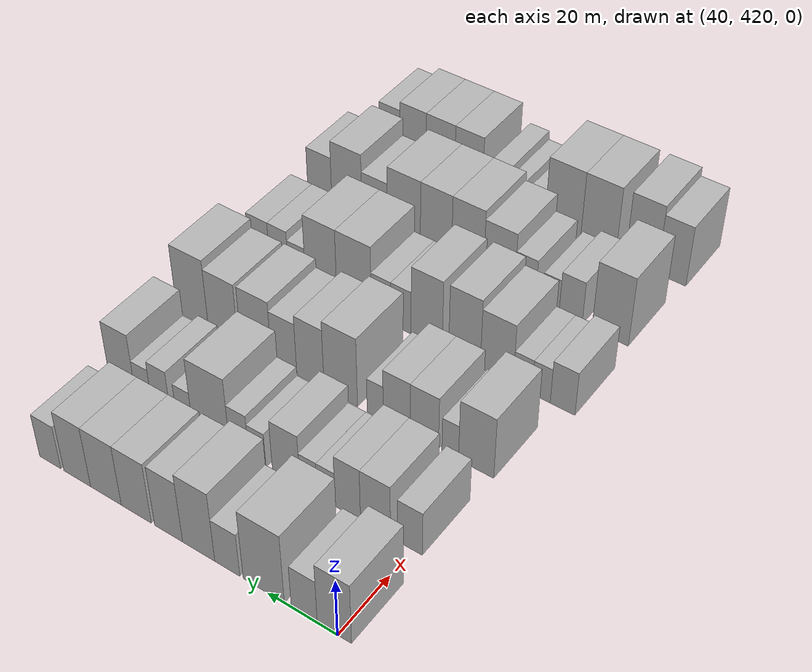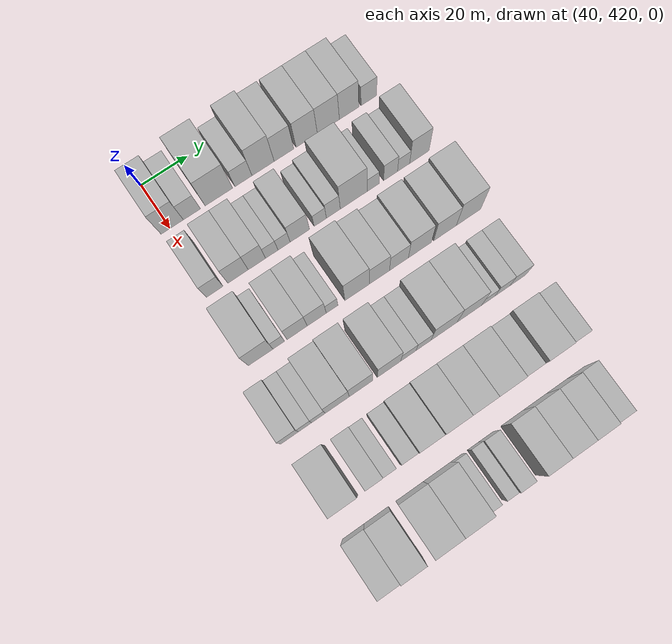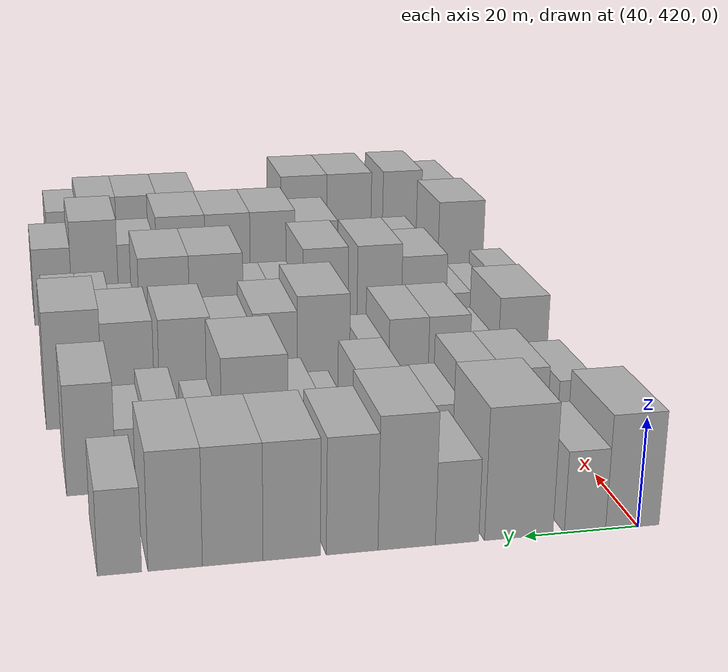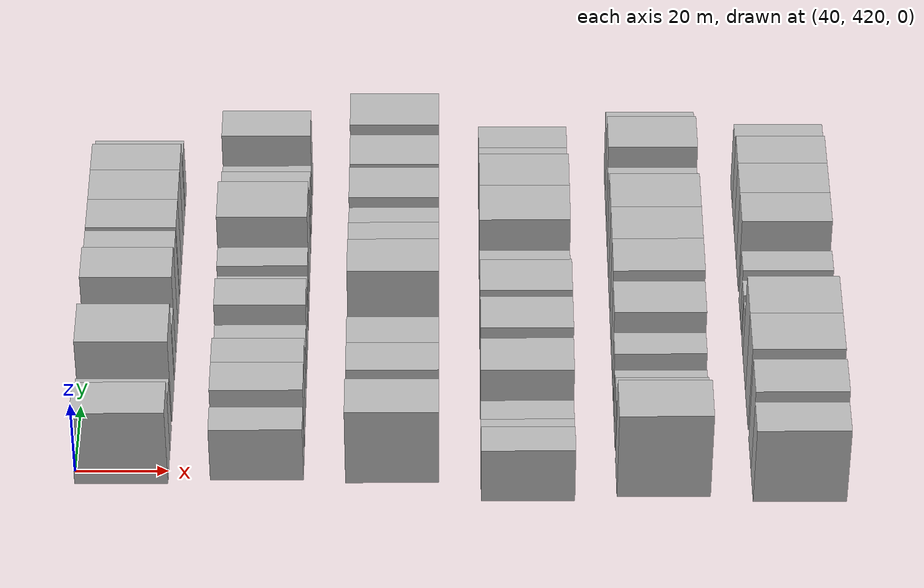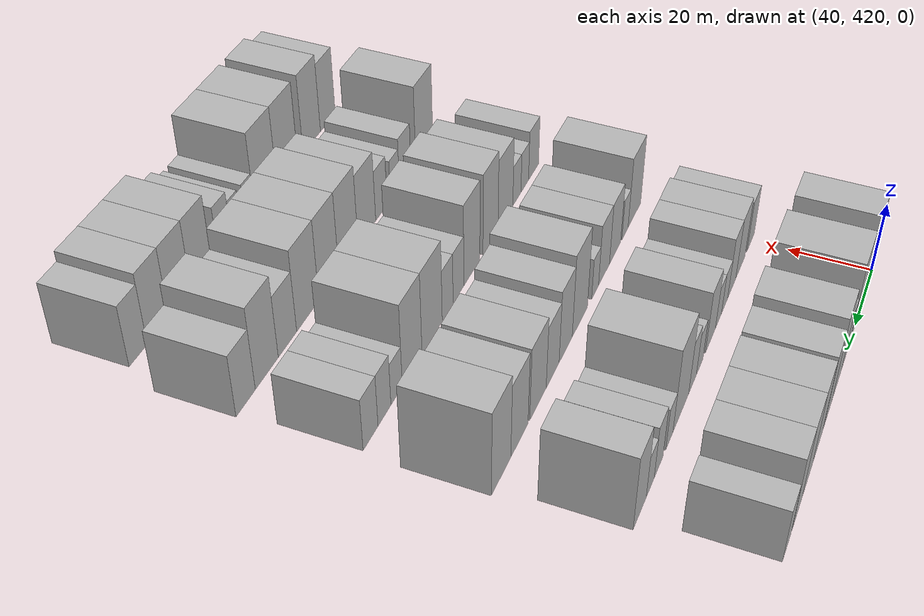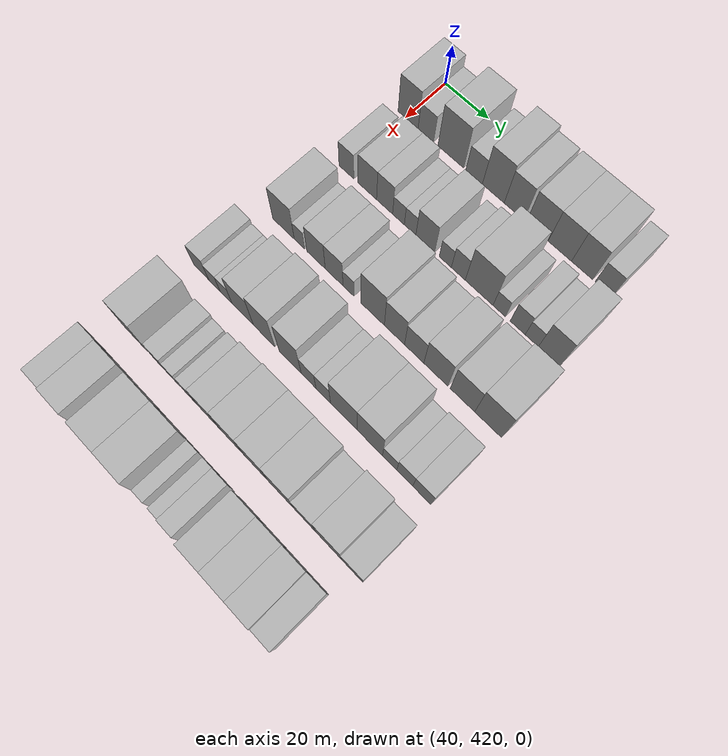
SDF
<sdf version="1.6">
 <world name="default">
  <model name="building_106">
   <static>1</static>
   <pose>50.0000 421.0700 0 0.000000 0.000000 0.000000</pose>
   <link name="link">
    <pose>0 0 10.50 0 0 0</pose>
    <collision name="collision"><geometry><box><size>20.0000 9.5259 21.0000</size></box></geometry></collision>
    <visual name="visual">
     <cast_shadows>0</cast_shadows>
     <geometry><box><size>20.0000 9.5259 21.0000</size></box></geometry>
     <material>
      <script>
       <uri>model://HANNAS_wall/materials/scripts</uri>
       <uri>model://HANNAS_wall/materials/textures</uri>
       <name>vrc/HANNAS_wall</name>
      </script>
     </material>
    </visual>
   </link>
  </model>
  <model name="building_107">
   <static>1</static>
   <pose>50.0000 429.4889 0 0.000000 0.000000 0.000000</pose>
   <link name="link">
    <pose>0 0 7.50 0 0 0</pose>
    <collision name="collision"><geometry><box><size>20.0000 7.3120 15.0000</size></box></geometry></collision>
    <visual name="visual">
     <cast_shadows>0</cast_shadows>
     <geometry><box><size>20.0000 7.3120 15.0000</size></box></geometry>
     <material>
      <script>
       <uri>model://HANNAS_wall/materials/scripts</uri>
       <uri>model://HANNAS_wall/materials/textures</uri>
       <name>vrc/HANNAS_wall</name>
      </script>
     </material>
    </visual>
   </link>
  </model>
  <model name="building_108">
   <static>1</static>
   <pose>50.0000 441.0995 0 0.000000 0.000000 0.000000</pose>
   <link name="link">
    <pose>0 0 12.00 0 0 0</pose>
    <collision name="collision"><geometry><box><size>20.0000 11.9092 24.0000</size></box></geometry></collision>
    <visual name="visual">
     <cast_shadows>0</cast_shadows>
     <geometry><box><size>20.0000 11.9092 24.0000</size></box></geometry>
     <material>
      <script>
       <uri>model://HANNAS_wall/materials/scripts</uri>
       <uri>model://HANNAS_wall/materials/textures</uri>
       <name>vrc/HANNAS_wall</name>
      </script>
     </material>
    </visual>
   </link>
  </model>
  <model name="building_109">
   <static>1</static>
   <pose>50.0000 451.7712 0 0.000000 0.000000 0.000000</pose>
   <link name="link">
    <pose>0 0 7.50 0 0 0</pose>
    <collision name="collision"><geometry><box><size>20.0000 7.4341 15.0000</size></box></geometry></collision>
    <visual name="visual">
     <cast_shadows>0</cast_shadows>
     <geometry><box><size>20.0000 7.4341 15.0000</size></box></geometry>
     <material>
      <script>
       <uri>model://HANNAS_wall/materials/scripts</uri>
       <uri>model://HANNAS_wall/materials/textures</uri>
       <name>vrc/HANNAS_wall</name>
      </script>
     </material>
    </visual>
   </link>
  </model>
  <model name="building_110">
   <static>1</static>
   <pose>50.0000 460.3554 0 0.000000 0.000000 0.000000</pose>
   <link name="link">
    <pose>0 0 12.00 0 0 0</pose>
    <collision name="collision"><geometry><box><size>20.0000 9.7344 24.0000</size></box></geometry></collision>
    <visual name="visual">
     <cast_shadows>0</cast_shadows>
     <geometry><box><size>20.0000 9.7344 24.0000</size></box></geometry>
     <material>
      <script>
       <uri>model://HANNAS_wall/materials/scripts</uri>
       <uri>model://HANNAS_wall/materials/textures</uri>
       <name>vrc/HANNAS_wall</name>
      </script>
     </material>
    </visual>
   </link>
  </model>
  <model name="building_111">
   <static>1</static>
   <pose>50.0000 469.5502 0 0.000000 0.000000 0.000000</pose>
   <link name="link">
    <pose>0 0 10.50 0 0 0</pose>
    <collision name="collision"><geometry><box><size>20.0000 8.6552 21.0000</size></box></geometry></collision>
    <visual name="visual">
     <cast_shadows>0</cast_shadows>
     <geometry><box><size>20.0000 8.6552 21.0000</size></box></geometry>
     <material>
      <script>
       <uri>model://HANNAS_wall/materials/scripts</uri>
       <uri>model://HANNAS_wall/materials/textures</uri>
       <name>vrc/HANNAS_wall</name>
      </script>
     </material>
    </visual>
   </link>
  </model>
  <model name="building_112">
   <static>1</static>
   <pose>50.0000 479.6152 0 0.000000 0.000000 0.000000</pose>
   <link name="link">
    <pose>0 0 10.50 0 0 0</pose>
    <collision name="collision"><geometry><box><size>20.0000 9.4749 21.0000</size></box></geometry></collision>
    <visual name="visual">
     <cast_shadows>0</cast_shadows>
     <geometry><box><size>20.0000 9.4749 21.0000</size></box></geometry>
     <material>
      <script>
       <uri>model://HANNAS_wall/materials/scripts</uri>
       <uri>model://HANNAS_wall/materials/textures</uri>
       <name>vrc/HANNAS_wall</name>
      </script>
     </material>
    </visual>
   </link>
  </model>
  <model name="building_113">
   <static>1</static>
   <pose>50.0000 489.2938 0 0.000000 0.000000 0.000000</pose>
   <link name="link">
    <pose>0 0 10.50 0 0 0</pose>
    <collision name="collision"><geometry><box><size>20.0000 9.8824 21.0000</size></box></geometry></collision>
    <visual name="visual">
     <cast_shadows>0</cast_shadows>
     <geometry><box><size>20.0000 9.8824 21.0000</size></box></geometry>
     <material>
      <script>
       <uri>model://HANNAS_wall/materials/scripts</uri>
       <uri>model://HANNAS_wall/materials/textures</uri>
       <name>vrc/HANNAS_wall</name>
      </script>
     </material>
    </visual>
   </link>
  </model>
  <model name="building_114">
   <static>1</static>
   <pose>50.0000 498.6228 0 0.000000 0.000000 0.000000</pose>
   <link name="link">
    <pose>0 0 10.50 0 0 0</pose>
    <collision name="collision"><geometry><box><size>20.0000 8.7757 21.0000</size></box></geometry></collision>
    <visual name="visual">
     <cast_shadows>0</cast_shadows>
     <geometry><box><size>20.0000 8.7757 21.0000</size></box></geometry>
     <material>
      <script>
       <uri>model://HANNAS_wall/materials/scripts</uri>
       <uri>model://HANNAS_wall/materials/textures</uri>
       <name>vrc/HANNAS_wall</name>
      </script>
     </material>
    </visual>
   </link>
  </model>
  <model name="building_115">
   <static>1</static>
   <pose>50.0000 507.5429 0 0.000000 0.000000 0.000000</pose>
   <link name="link">
    <pose>0 0 7.50 0 0 0</pose>
    <collision name="collision"><geometry><box><size>20.0000 7.0644 15.0000</size></box></geometry></collision>
    <visual name="visual">
     <cast_shadows>0</cast_shadows>
     <geometry><box><size>20.0000 7.0644 15.0000</size></box></geometry>
     <material>
      <script>
       <uri>model://HANNAS_wall/materials/scripts</uri>
       <uri>model://HANNAS_wall/materials/textures</uri>
       <name>vrc/HANNAS_wall</name>
      </script>
     </material>
    </visual>
   </link>
  </model>
  <model name="building_218">
   <static>1</static>
   <pose>79.0000 420.8566 0 0.000000 0.000000 0.000000</pose>
   <link name="link">
    <pose>0 0 7.50 0 0 0</pose>
    <collision name="collision"><geometry><box><size>20.0000 7.0598 15.0000</size></box></geometry></collision>
    <visual name="visual">
     <cast_shadows>0</cast_shadows>
     <geometry><box><size>20.0000 7.0598 15.0000</size></box></geometry>
     <material>
      <script>
       <uri>model://HANNAS_wall/materials/scripts</uri>
       <uri>model://HANNAS_wall/materials/textures</uri>
       <name>vrc/HANNAS_wall</name>
      </script>
     </material>
    </visual>
   </link>
  </model>
  <model name="building_219">
   <static>1</static>
   <pose>79.0000 430.7290 0 0.000000 0.000000 0.000000</pose>
   <link name="link">
    <pose>0 0 9.00 0 0 0</pose>
    <collision name="collision"><geometry><box><size>20.0000 8.6850 18.0000</size></box></geometry></collision>
    <visual name="visual">
     <cast_shadows>0</cast_shadows>
     <geometry><box><size>20.0000 8.6850 18.0000</size></box></geometry>
     <material>
      <script>
       <uri>model://HANNAS_wall/materials/scripts</uri>
       <uri>model://HANNAS_wall/materials/textures</uri>
       <name>vrc/HANNAS_wall</name>
      </script>
     </material>
    </visual>
   </link>
  </model>
  <model name="building_220">
   <static>1</static>
   <pose>79.0000 438.7784 0 0.000000 0.000000 0.000000</pose>
   <link name="link">
    <pose>0 0 9.00 0 0 0</pose>
    <collision name="collision"><geometry><box><size>20.0000 7.4138 18.0000</size></box></geometry></collision>
    <visual name="visual">
     <cast_shadows>0</cast_shadows>
     <geometry><box><size>20.0000 7.4138 18.0000</size></box></geometry>
     <material>
      <script>
       <uri>model://HANNAS_wall/materials/scripts</uri>
       <uri>model://HANNAS_wall/materials/textures</uri>
       <name>vrc/HANNAS_wall</name>
      </script>
     </material>
    </visual>
   </link>
  </model>
  <model name="building_221">
   <static>1</static>
   <pose>79.0000 445.1678 0 0.000000 0.000000 0.000000</pose>
   <link name="link">
    <pose>0 0 6.00 0 0 0</pose>
    <collision name="collision"><geometry><box><size>20.0000 5.3648 12.0000</size></box></geometry></collision>
    <visual name="visual">
     <cast_shadows>0</cast_shadows>
     <geometry><box><size>20.0000 5.3648 12.0000</size></box></geometry>
     <material>
      <script>
       <uri>model://HANNAS_wall/materials/scripts</uri>
       <uri>model://HANNAS_wall/materials/textures</uri>
       <name>vrc/HANNAS_wall</name>
      </script>
     </material>
    </visual>
   </link>
  </model>
  <model name="building_222">
   <static>1</static>
   <pose>79.0000 450.4638 0 0.000000 0.000000 0.000000</pose>
   <link name="link">
    <pose>0 0 6.00 0 0 0</pose>
    <collision name="collision"><geometry><box><size>20.0000 5.2271 12.0000</size></box></geometry></collision>
    <visual name="visual">
     <cast_shadows>0</cast_shadows>
     <geometry><box><size>20.0000 5.2271 12.0000</size></box></geometry>
     <material>
      <script>
       <uri>model://HANNAS_wall/materials/scripts</uri>
       <uri>model://HANNAS_wall/materials/textures</uri>
       <name>vrc/HANNAS_wall</name>
      </script>
     </material>
    </visual>
   </link>
  </model>
  <model name="building_223">
   <static>1</static>
   <pose>79.0000 457.2818 0 0.000000 0.000000 0.000000</pose>
   <link name="link">
    <pose>0 0 9.00 0 0 0</pose>
    <collision name="collision"><geometry><box><size>20.0000 8.4089 18.0000</size></box></geometry></collision>
    <visual name="visual">
     <cast_shadows>0</cast_shadows>
     <geometry><box><size>20.0000 8.4089 18.0000</size></box></geometry>
     <material>
      <script>
       <uri>model://HANNAS_wall/materials/scripts</uri>
       <uri>model://HANNAS_wall/materials/textures</uri>
       <name>vrc/HANNAS_wall</name>
      </script>
     </material>
    </visual>
   </link>
  </model>
  <model name="building_224">
   <static>1</static>
   <pose>79.0000 466.1671 0 0.000000 0.000000 0.000000</pose>
   <link name="link">
    <pose>0 0 6.00 0 0 0</pose>
    <collision name="collision"><geometry><box><size>20.0000 5.3617 12.0000</size></box></geometry></collision>
    <visual name="visual">
     <cast_shadows>0</cast_shadows>
     <geometry><box><size>20.0000 5.3617 12.0000</size></box></geometry>
     <material>
      <script>
       <uri>model://HANNAS_wall/materials/scripts</uri>
       <uri>model://HANNAS_wall/materials/textures</uri>
       <name>vrc/HANNAS_wall</name>
      </script>
     </material>
    </visual>
   </link>
  </model>
  <model name="building_225">
   <static>1</static>
   <pose>79.0000 471.8829 0 0.000000 0.000000 0.000000</pose>
   <link name="link">
    <pose>0 0 7.50 0 0 0</pose>
    <collision name="collision"><geometry><box><size>20.0000 6.0700 15.0000</size></box></geometry></collision>
    <visual name="visual">
     <cast_shadows>0</cast_shadows>
     <geometry><box><size>20.0000 6.0700 15.0000</size></box></geometry>
     <material>
      <script>
       <uri>model://HANNAS_wall/materials/scripts</uri>
       <uri>model://HANNAS_wall/materials/textures</uri>
       <name>vrc/HANNAS_wall</name>
      </script>
     </material>
    </visual>
   </link>
  </model>
  <model name="building_226">
   <static>1</static>
   <pose>79.0000 480.8819 0 0.000000 0.000000 0.000000</pose>
   <link name="link">
    <pose>0 0 12.00 0 0 0</pose>
    <collision name="collision"><geometry><box><size>20.0000 11.9279 24.0000</size></box></geometry></collision>
    <visual name="visual">
     <cast_shadows>0</cast_shadows>
     <geometry><box><size>20.0000 11.9279 24.0000</size></box></geometry>
     <material>
      <script>
       <uri>model://HANNAS_wall/materials/scripts</uri>
       <uri>model://HANNAS_wall/materials/textures</uri>
       <name>vrc/HANNAS_wall</name>
      </script>
     </material>
    </visual>
   </link>
  </model>
  <model name="building_227">
   <static>1</static>
   <pose>79.0000 489.4643 0 0.000000 0.000000 0.000000</pose>
   <link name="link">
    <pose>0 0 6.00 0 0 0</pose>
    <collision name="collision"><geometry><box><size>20.0000 5.2369 12.0000</size></box></geometry></collision>
    <visual name="visual">
     <cast_shadows>0</cast_shadows>
     <geometry><box><size>20.0000 5.2369 12.0000</size></box></geometry>
     <material>
      <script>
       <uri>model://HANNAS_wall/materials/scripts</uri>
       <uri>model://HANNAS_wall/materials/textures</uri>
       <name>vrc/HANNAS_wall</name>
      </script>
     </material>
    </visual>
   </link>
  </model>
  <model name="building_228">
   <static>1</static>
   <pose>79.0000 497.1953 0 0.000000 0.000000 0.000000</pose>
   <link name="link">
    <pose>0 0 7.50 0 0 0</pose>
    <collision name="collision"><geometry><box><size>20.0000 6.2251 15.0000</size></box></geometry></collision>
    <visual name="visual">
     <cast_shadows>0</cast_shadows>
     <geometry><box><size>20.0000 6.2251 15.0000</size></box></geometry>
     <material>
      <script>
       <uri>model://HANNAS_wall/materials/scripts</uri>
       <uri>model://HANNAS_wall/materials/textures</uri>
       <name>vrc/HANNAS_wall</name>
      </script>
     </material>
    </visual>
   </link>
  </model>
  <model name="building_229">
   <static>1</static>
   <pose>79.0000 503.0365 0 0.000000 0.000000 0.000000</pose>
   <link name="link">
    <pose>0 0 6.00 0 0 0</pose>
    <collision name="collision"><geometry><box><size>20.0000 5.4574 12.0000</size></box></geometry></collision>
    <visual name="visual">
     <cast_shadows>0</cast_shadows>
     <geometry><box><size>20.0000 5.4574 12.0000</size></box></geometry>
     <material>
      <script>
       <uri>model://HANNAS_wall/materials/scripts</uri>
       <uri>model://HANNAS_wall/materials/textures</uri>
       <name>vrc/HANNAS_wall</name>
      </script>
     </material>
    </visual>
   </link>
  </model>
  <model name="building_230">
   <static>1</static>
   <pose>79.0000 510.1173 0 0.000000 0.000000 0.000000</pose>
   <link name="link">
    <pose>0 0 10.50 0 0 0</pose>
    <collision name="collision"><geometry><box><size>20.0000 8.7043 21.0000</size></box></geometry></collision>
    <visual name="visual">
     <cast_shadows>0</cast_shadows>
     <geometry><box><size>20.0000 8.7043 21.0000</size></box></geometry>
     <material>
      <script>
       <uri>model://HANNAS_wall/materials/scripts</uri>
       <uri>model://HANNAS_wall/materials/textures</uri>
       <name>vrc/HANNAS_wall</name>
      </script>
     </material>
    </visual>
   </link>
  </model>
  <model name="building_336">
   <static>1</static>
   <pose>108.0000 421.5113 0 0.000000 0.000000 0.000000</pose>
   <link name="link">
    <pose>0 0 10.50 0 0 0</pose>
    <collision name="collision"><geometry><box><size>20.0000 10.2613 21.0000</size></box></geometry></collision>
    <visual name="visual">
     <cast_shadows>0</cast_shadows>
     <geometry><box><size>20.0000 10.2613 21.0000</size></box></geometry>
     <material>
      <script>
       <uri>model://HANNAS_wall/materials/scripts</uri>
       <uri>model://HANNAS_wall/materials/textures</uri>
       <name>vrc/HANNAS_wall</name>
      </script>
     </material>
    </visual>
   </link>
  </model>
  <model name="building_337">
   <static>1</static>
   <pose>108.0000 429.0922 0 0.000000 0.000000 0.000000</pose>
   <link name="link">
    <pose>0 0 6.00 0 0 0</pose>
    <collision name="collision"><geometry><box><size>20.0000 4.9005 12.0000</size></box></geometry></collision>
    <visual name="visual">
     <cast_shadows>0</cast_shadows>
     <geometry><box><size>20.0000 4.9005 12.0000</size></box></geometry>
     <material>
      <script>
       <uri>model://HANNAS_wall/materials/scripts</uri>
       <uri>model://HANNAS_wall/materials/textures</uri>
       <name>vrc/HANNAS_wall</name>
      </script>
     </material>
    </visual>
   </link>
  </model>
  <model name="building_338">
   <static>1</static>
   <pose>108.0000 436.8158 0 0.000000 0.000000 0.000000</pose>
   <link name="link">
    <pose>0 0 9.00 0 0 0</pose>
    <collision name="collision"><geometry><box><size>20.0000 8.5467 18.0000</size></box></geometry></collision>
    <visual name="visual">
     <cast_shadows>0</cast_shadows>
     <geometry><box><size>20.0000 8.5467 18.0000</size></box></geometry>
     <material>
      <script>
       <uri>model://HANNAS_wall/materials/scripts</uri>
       <uri>model://HANNAS_wall/materials/textures</uri>
       <name>vrc/HANNAS_wall</name>
      </script>
     </material>
    </visual>
   </link>
  </model>
  <model name="building_339">
   <static>1</static>
   <pose>108.0000 445.1561 0 0.000000 0.000000 0.000000</pose>
   <link name="link">
    <pose>0 0 9.00 0 0 0</pose>
    <collision name="collision"><geometry><box><size>20.0000 8.1340 18.0000</size></box></geometry></collision>
    <visual name="visual">
     <cast_shadows>0</cast_shadows>
     <geometry><box><size>20.0000 8.1340 18.0000</size></box></geometry>
     <material>
      <script>
       <uri>model://HANNAS_wall/materials/scripts</uri>
       <uri>model://HANNAS_wall/materials/textures</uri>
       <name>vrc/HANNAS_wall</name>
      </script>
     </material>
    </visual>
   </link>
  </model>
  <model name="building_340">
   <static>1</static>
   <pose>108.0000 451.7113 0 0.000000 0.000000 0.000000</pose>
   <link name="link">
    <pose>0 0 6.00 0 0 0</pose>
    <collision name="collision"><geometry><box><size>20.0000 4.9764 12.0000</size></box></geometry></collision>
    <visual name="visual">
     <cast_shadows>0</cast_shadows>
     <geometry><box><size>20.0000 4.9764 12.0000</size></box></geometry>
     <material>
      <script>
       <uri>model://HANNAS_wall/materials/scripts</uri>
       <uri>model://HANNAS_wall/materials/textures</uri>
       <name>vrc/HANNAS_wall</name>
      </script>
     </material>
    </visual>
   </link>
  </model>
  <model name="building_341">
   <static>1</static>
   <pose>108.0000 462.4557 0 0.000000 0.000000 0.000000</pose>
   <link name="link">
    <pose>0 0 12.00 0 0 0</pose>
    <collision name="collision"><geometry><box><size>20.0000 10.5124 24.0000</size></box></geometry></collision>
    <visual name="visual">
     <cast_shadows>0</cast_shadows>
     <geometry><box><size>20.0000 10.5124 24.0000</size></box></geometry>
     <material>
      <script>
       <uri>model://HANNAS_wall/materials/scripts</uri>
       <uri>model://HANNAS_wall/materials/textures</uri>
       <name>vrc/HANNAS_wall</name>
      </script>
     </material>
    </visual>
   </link>
  </model>
  <model name="building_342">
   <static>1</static>
   <pose>108.0000 472.1024 0 0.000000 0.000000 0.000000</pose>
   <link name="link">
    <pose>0 0 10.50 0 0 0</pose>
    <collision name="collision"><geometry><box><size>20.0000 8.7811 21.0000</size></box></geometry></collision>
    <visual name="visual">
     <cast_shadows>0</cast_shadows>
     <geometry><box><size>20.0000 8.7811 21.0000</size></box></geometry>
     <material>
      <script>
       <uri>model://HANNAS_wall/materials/scripts</uri>
       <uri>model://HANNAS_wall/materials/textures</uri>
       <name>vrc/HANNAS_wall</name>
      </script>
     </material>
    </visual>
   </link>
  </model>
  <model name="building_343">
   <static>1</static>
   <pose>108.0000 480.6254 0 0.000000 0.000000 0.000000</pose>
   <link name="link">
    <pose>0 0 9.00 0 0 0</pose>
    <collision name="collision"><geometry><box><size>20.0000 8.2649 18.0000</size></box></geometry></collision>
    <visual name="visual">
     <cast_shadows>0</cast_shadows>
     <geometry><box><size>20.0000 8.2649 18.0000</size></box></geometry>
     <material>
      <script>
       <uri>model://HANNAS_wall/materials/scripts</uri>
       <uri>model://HANNAS_wall/materials/textures</uri>
       <name>vrc/HANNAS_wall</name>
      </script>
     </material>
    </visual>
   </link>
  </model>
  <model name="building_344">
   <static>1</static>
   <pose>108.0000 489.8284 0 0.000000 0.000000 0.000000</pose>
   <link name="link">
    <pose>0 0 10.50 0 0 0</pose>
    <collision name="collision"><geometry><box><size>20.0000 10.1411 21.0000</size></box></geometry></collision>
    <visual name="visual">
     <cast_shadows>0</cast_shadows>
     <geometry><box><size>20.0000 10.1411 21.0000</size></box></geometry>
     <material>
      <script>
       <uri>model://HANNAS_wall/materials/scripts</uri>
       <uri>model://HANNAS_wall/materials/textures</uri>
       <name>vrc/HANNAS_wall</name>
      </script>
     </material>
    </visual>
   </link>
  </model>
  <model name="building_345">
   <static>1</static>
   <pose>108.0000 500.9494 0 0.000000 0.000000 0.000000</pose>
   <link name="link">
    <pose>0 0 10.50 0 0 0</pose>
    <collision name="collision"><geometry><box><size>20.0000 10.1008 21.0000</size></box></geometry></collision>
    <visual name="visual">
     <cast_shadows>0</cast_shadows>
     <geometry><box><size>20.0000 10.1008 21.0000</size></box></geometry>
     <material>
      <script>
       <uri>model://HANNAS_wall/materials/scripts</uri>
       <uri>model://HANNAS_wall/materials/textures</uri>
       <name>vrc/HANNAS_wall</name>
      </script>
     </material>
    </visual>
   </link>
  </model>
  <model name="building_346">
   <static>1</static>
   <pose>108.0000 511.4466 0 0.000000 0.000000 0.000000</pose>
   <link name="link">
    <pose>0 0 12.00 0 0 0</pose>
    <collision name="collision"><geometry><box><size>20.0000 10.8937 24.0000</size></box></geometry></collision>
    <visual name="visual">
     <cast_shadows>0</cast_shadows>
     <geometry><box><size>20.0000 10.8937 24.0000</size></box></geometry>
     <material>
      <script>
       <uri>model://HANNAS_wall/materials/scripts</uri>
       <uri>model://HANNAS_wall/materials/textures</uri>
       <name>vrc/HANNAS_wall</name>
      </script>
     </material>
    </visual>
   </link>
  </model>
  <model name="building_451">
   <static>1</static>
   <pose>137.0000 414.5293 0 0.000000 0.000000 0.000000</pose>
   <link name="link">
    <pose>0 0 7.50 0 0 0</pose>
    <collision name="collision"><geometry><box><size>20.0000 7.2619 15.0000</size></box></geometry></collision>
    <visual name="visual">
     <cast_shadows>0</cast_shadows>
     <geometry><box><size>20.0000 7.2619 15.0000</size></box></geometry>
     <material>
      <script>
       <uri>model://HANNAS_wall/materials/scripts</uri>
       <uri>model://HANNAS_wall/materials/textures</uri>
       <name>vrc/HANNAS_wall</name>
      </script>
     </material>
    </visual>
   </link>
  </model>
  <model name="building_452">
   <static>1</static>
   <pose>137.0000 420.8727 0 0.000000 0.000000 0.000000</pose>
   <link name="link">
    <pose>0 0 6.00 0 0 0</pose>
    <collision name="collision"><geometry><box><size>20.0000 5.4248 12.0000</size></box></geometry></collision>
    <visual name="visual">
     <cast_shadows>0</cast_shadows>
     <geometry><box><size>20.0000 5.4248 12.0000</size></box></geometry>
     <material>
      <script>
       <uri>model://HANNAS_wall/materials/scripts</uri>
       <uri>model://HANNAS_wall/materials/textures</uri>
       <name>vrc/HANNAS_wall</name>
      </script>
     </material>
    </visual>
   </link>
  </model>
  <model name="building_453">
   <static>1</static>
   <pose>137.0000 426.4140 0 0.000000 0.000000 0.000000</pose>
   <link name="link">
    <pose>0 0 6.00 0 0 0</pose>
    <collision name="collision"><geometry><box><size>20.0000 5.6580 12.0000</size></box></geometry></collision>
    <visual name="visual">
     <cast_shadows>0</cast_shadows>
     <geometry><box><size>20.0000 5.6580 12.0000</size></box></geometry>
     <material>
      <script>
       <uri>model://HANNAS_wall/materials/scripts</uri>
       <uri>model://HANNAS_wall/materials/textures</uri>
       <name>vrc/HANNAS_wall</name>
      </script>
     </material>
    </visual>
   </link>
  </model>
  <model name="building_454">
   <static>1</static>
   <pose>137.0000 434.2585 0 0.000000 0.000000 0.000000</pose>
   <link name="link">
    <pose>0 0 10.50 0 0 0</pose>
    <collision name="collision"><geometry><box><size>20.0000 10.0308 21.0000</size></box></geometry></collision>
    <visual name="visual">
     <cast_shadows>0</cast_shadows>
     <geometry><box><size>20.0000 10.0308 21.0000</size></box></geometry>
     <material>
      <script>
       <uri>model://HANNAS_wall/materials/scripts</uri>
       <uri>model://HANNAS_wall/materials/textures</uri>
       <name>vrc/HANNAS_wall</name>
      </script>
     </material>
    </visual>
   </link>
  </model>
  <model name="building_455">
   <static>1</static>
   <pose>137.0000 444.1839 0 0.000000 0.000000 0.000000</pose>
   <link name="link">
    <pose>0 0 12.00 0 0 0</pose>
    <collision name="collision"><geometry><box><size>20.0000 9.8200 24.0000</size></box></geometry></collision>
    <visual name="visual">
     <cast_shadows>0</cast_shadows>
     <geometry><box><size>20.0000 9.8200 24.0000</size></box></geometry>
     <material>
      <script>
       <uri>model://HANNAS_wall/materials/scripts</uri>
       <uri>model://HANNAS_wall/materials/textures</uri>
       <name>vrc/HANNAS_wall</name>
      </script>
     </material>
    </visual>
   </link>
  </model>
  <model name="building_456">
   <static>1</static>
   <pose>137.0000 456.0535 0 0.000000 0.000000 0.000000</pose>
   <link name="link">
    <pose>0 0 12.00 0 0 0</pose>
    <collision name="collision"><geometry><box><size>20.0000 9.9194 24.0000</size></box></geometry></collision>
    <visual name="visual">
     <cast_shadows>0</cast_shadows>
     <geometry><box><size>20.0000 9.9194 24.0000</size></box></geometry>
     <material>
      <script>
       <uri>model://HANNAS_wall/materials/scripts</uri>
       <uri>model://HANNAS_wall/materials/textures</uri>
       <name>vrc/HANNAS_wall</name>
      </script>
     </material>
    </visual>
   </link>
  </model>
  <model name="building_457">
   <static>1</static>
   <pose>137.0000 464.2619 0 0.000000 0.000000 0.000000</pose>
   <link name="link">
    <pose>0 0 7.50 0 0 0</pose>
    <collision name="collision"><geometry><box><size>20.0000 6.4974 15.0000</size></box></geometry></collision>
    <visual name="visual">
     <cast_shadows>0</cast_shadows>
     <geometry><box><size>20.0000 6.4974 15.0000</size></box></geometry>
     <material>
      <script>
       <uri>model://HANNAS_wall/materials/scripts</uri>
       <uri>model://HANNAS_wall/materials/textures</uri>
       <name>vrc/HANNAS_wall</name>
      </script>
     </material>
    </visual>
   </link>
  </model>
  <model name="building_458">
   <static>1</static>
   <pose>137.0000 470.6989 0 0.000000 0.000000 0.000000</pose>
   <link name="link">
    <pose>0 0 7.50 0 0 0</pose>
    <collision name="collision"><geometry><box><size>20.0000 6.3768 15.0000</size></box></geometry></collision>
    <visual name="visual">
     <cast_shadows>0</cast_shadows>
     <geometry><box><size>20.0000 6.3768 15.0000</size></box></geometry>
     <material>
      <script>
       <uri>model://HANNAS_wall/materials/scripts</uri>
       <uri>model://HANNAS_wall/materials/textures</uri>
       <name>vrc/HANNAS_wall</name>
      </script>
     </material>
    </visual>
   </link>
  </model>
  <model name="building_459">
   <static>1</static>
   <pose>137.0000 479.6136 0 0.000000 0.000000 0.000000</pose>
   <link name="link">
    <pose>0 0 12.00 0 0 0</pose>
    <collision name="collision"><geometry><box><size>20.0000 11.4525 24.0000</size></box></geometry></collision>
    <visual name="visual">
     <cast_shadows>0</cast_shadows>
     <geometry><box><size>20.0000 11.4525 24.0000</size></box></geometry>
     <material>
      <script>
       <uri>model://HANNAS_wall/materials/scripts</uri>
       <uri>model://HANNAS_wall/materials/textures</uri>
       <name>vrc/HANNAS_wall</name>
      </script>
     </material>
    </visual>
   </link>
  </model>
  <model name="building_460">
   <static>1</static>
   <pose>137.0000 490.6559 0 0.000000 0.000000 0.000000</pose>
   <link name="link">
    <pose>0 0 12.00 0 0 0</pose>
    <collision name="collision"><geometry><box><size>20.0000 10.6320 24.0000</size></box></geometry></collision>
    <visual name="visual">
     <cast_shadows>0</cast_shadows>
     <geometry><box><size>20.0000 10.6320 24.0000</size></box></geometry>
     <material>
      <script>
       <uri>model://HANNAS_wall/materials/scripts</uri>
       <uri>model://HANNAS_wall/materials/textures</uri>
       <name>vrc/HANNAS_wall</name>
      </script>
     </material>
    </visual>
   </link>
  </model>
  <model name="building_461">
   <static>1</static>
   <pose>137.0000 498.9231 0 0.000000 0.000000 0.000000</pose>
   <link name="link">
    <pose>0 0 6.00 0 0 0</pose>
    <collision name="collision"><geometry><box><size>20.0000 5.9023 12.0000</size></box></geometry></collision>
    <visual name="visual">
     <cast_shadows>0</cast_shadows>
     <geometry><box><size>20.0000 5.9023 12.0000</size></box></geometry>
     <material>
      <script>
       <uri>model://HANNAS_wall/materials/scripts</uri>
       <uri>model://HANNAS_wall/materials/textures</uri>
       <name>vrc/HANNAS_wall</name>
      </script>
     </material>
    </visual>
   </link>
  </model>
  <model name="building_462">
   <static>1</static>
   <pose>137.0000 505.1455 0 0.000000 0.000000 0.000000</pose>
   <link name="link">
    <pose>0 0 7.50 0 0 0</pose>
    <collision name="collision"><geometry><box><size>20.0000 6.5425 15.0000</size></box></geometry></collision>
    <visual name="visual">
     <cast_shadows>0</cast_shadows>
     <geometry><box><size>20.0000 6.5425 15.0000</size></box></geometry>
     <material>
      <script>
       <uri>model://HANNAS_wall/materials/scripts</uri>
       <uri>model://HANNAS_wall/materials/textures</uri>
       <name>vrc/HANNAS_wall</name>
      </script>
     </material>
    </visual>
   </link>
  </model>
  <model name="building_463">
   <static>1</static>
   <pose>137.0000 512.0846 0 0.000000 0.000000 0.000000</pose>
   <link name="link">
    <pose>0 0 7.50 0 0 0</pose>
    <collision name="collision"><geometry><box><size>20.0000 7.3358 15.0000</size></box></geometry></collision>
    <visual name="visual">
     <cast_shadows>0</cast_shadows>
     <geometry><box><size>20.0000 7.3358 15.0000</size></box></geometry>
     <material>
      <script>
       <uri>model://HANNAS_wall/materials/scripts</uri>
       <uri>model://HANNAS_wall/materials/textures</uri>
       <name>vrc/HANNAS_wall</name>
      </script>
     </material>
    </visual>
   </link>
  </model>
  <model name="building_574">
   <static>1</static>
   <pose>166.0000 417.4989 0 0.000000 0.000000 0.000000</pose>
   <link name="link">
    <pose>0 0 12.00 0 0 0</pose>
    <collision name="collision"><geometry><box><size>20.0000 11.0020 24.0000</size></box></geometry></collision>
    <visual name="visual">
     <cast_shadows>0</cast_shadows>
     <geometry><box><size>20.0000 11.0020 24.0000</size></box></geometry>
     <material>
      <script>
       <uri>model://HANNAS_wall/materials/scripts</uri>
       <uri>model://HANNAS_wall/materials/textures</uri>
       <name>vrc/HANNAS_wall</name>
      </script>
     </material>
    </visual>
   </link>
  </model>
  <model name="building_575">
   <static>1</static>
   <pose>166.0000 429.5696 0 0.000000 0.000000 0.000000</pose>
   <link name="link">
    <pose>0 0 7.50 0 0 0</pose>
    <collision name="collision"><geometry><box><size>20.0000 7.1395 15.0000</size></box></geometry></collision>
    <visual name="visual">
     <cast_shadows>0</cast_shadows>
     <geometry><box><size>20.0000 7.1395 15.0000</size></box></geometry>
     <material>
      <script>
       <uri>model://HANNAS_wall/materials/scripts</uri>
       <uri>model://HANNAS_wall/materials/textures</uri>
       <name>vrc/HANNAS_wall</name>
      </script>
     </material>
    </visual>
   </link>
  </model>
  <model name="building_576">
   <static>1</static>
   <pose>166.0000 435.8285 0 0.000000 0.000000 0.000000</pose>
   <link name="link">
    <pose>0 0 6.00 0 0 0</pose>
    <collision name="collision"><geometry><box><size>20.0000 5.3783 12.0000</size></box></geometry></collision>
    <visual name="visual">
     <cast_shadows>0</cast_shadows>
     <geometry><box><size>20.0000 5.3783 12.0000</size></box></geometry>
     <material>
      <script>
       <uri>model://HANNAS_wall/materials/scripts</uri>
       <uri>model://HANNAS_wall/materials/textures</uri>
       <name>vrc/HANNAS_wall</name>
      </script>
     </material>
    </visual>
   </link>
  </model>
  <model name="building_577">
   <static>1</static>
   <pose>166.0000 443.8688 0 0.000000 0.000000 0.000000</pose>
   <link name="link">
    <pose>0 0 7.50 0 0 0</pose>
    <collision name="collision"><geometry><box><size>20.0000 6.7024 15.0000</size></box></geometry></collision>
    <visual name="visual">
     <cast_shadows>0</cast_shadows>
     <geometry><box><size>20.0000 6.7024 15.0000</size></box></geometry>
     <material>
      <script>
       <uri>model://HANNAS_wall/materials/scripts</uri>
       <uri>model://HANNAS_wall/materials/textures</uri>
       <name>vrc/HANNAS_wall</name>
      </script>
     </material>
    </visual>
   </link>
  </model>
  <model name="building_578">
   <static>1</static>
   <pose>166.0000 452.2185 0 0.000000 0.000000 0.000000</pose>
   <link name="link">
    <pose>0 0 10.50 0 0 0</pose>
    <collision name="collision"><geometry><box><size>20.0000 9.9971 21.0000</size></box></geometry></collision>
    <visual name="visual">
     <cast_shadows>0</cast_shadows>
     <geometry><box><size>20.0000 9.9971 21.0000</size></box></geometry>
     <material>
      <script>
       <uri>model://HANNAS_wall/materials/scripts</uri>
       <uri>model://HANNAS_wall/materials/textures</uri>
       <name>vrc/HANNAS_wall</name>
      </script>
     </material>
    </visual>
   </link>
  </model>
  <model name="building_579">
   <static>1</static>
   <pose>166.0000 462.4750 0 0.000000 0.000000 0.000000</pose>
   <link name="link">
    <pose>0 0 12.00 0 0 0</pose>
    <collision name="collision"><geometry><box><size>20.0000 10.5160 24.0000</size></box></geometry></collision>
    <visual name="visual">
     <cast_shadows>0</cast_shadows>
     <geometry><box><size>20.0000 10.5160 24.0000</size></box></geometry>
     <material>
      <script>
       <uri>model://HANNAS_wall/materials/scripts</uri>
       <uri>model://HANNAS_wall/materials/textures</uri>
       <name>vrc/HANNAS_wall</name>
      </script>
     </material>
    </visual>
   </link>
  </model>
  <model name="building_580">
   <static>1</static>
   <pose>166.0000 472.9414 0 0.000000 0.000000 0.000000</pose>
   <link name="link">
    <pose>0 0 12.00 0 0 0</pose>
    <collision name="collision"><geometry><box><size>20.0000 10.4168 24.0000</size></box></geometry></collision>
    <visual name="visual">
     <cast_shadows>0</cast_shadows>
     <geometry><box><size>20.0000 10.4168 24.0000</size></box></geometry>
     <material>
      <script>
       <uri>model://HANNAS_wall/materials/scripts</uri>
       <uri>model://HANNAS_wall/materials/textures</uri>
       <name>vrc/HANNAS_wall</name>
      </script>
     </material>
    </visual>
   </link>
  </model>
  <model name="building_581">
   <static>1</static>
   <pose>166.0000 483.7211 0 0.000000 0.000000 0.000000</pose>
   <link name="link">
    <pose>0 0 12.00 0 0 0</pose>
    <collision name="collision"><geometry><box><size>20.0000 11.1425 24.0000</size></box></geometry></collision>
    <visual name="visual">
     <cast_shadows>0</cast_shadows>
     <geometry><box><size>20.0000 11.1425 24.0000</size></box></geometry>
     <material>
      <script>
       <uri>model://HANNAS_wall/materials/scripts</uri>
       <uri>model://HANNAS_wall/materials/textures</uri>
       <name>vrc/HANNAS_wall</name>
      </script>
     </material>
    </visual>
   </link>
  </model>
  <model name="building_582">
   <static>1</static>
   <pose>166.0000 493.7133 0 0.000000 0.000000 0.000000</pose>
   <link name="link">
    <pose>0 0 9.00 0 0 0</pose>
    <collision name="collision"><geometry><box><size>20.0000 8.8420 18.0000</size></box></geometry></collision>
    <visual name="visual">
     <cast_shadows>0</cast_shadows>
     <geometry><box><size>20.0000 8.8420 18.0000</size></box></geometry>
     <material>
      <script>
       <uri>model://HANNAS_wall/materials/scripts</uri>
       <uri>model://HANNAS_wall/materials/textures</uri>
       <name>vrc/HANNAS_wall</name>
      </script>
     </material>
    </visual>
   </link>
  </model>
  <model name="building_583">
   <static>1</static>
   <pose>166.0000 503.4275 0 0.000000 0.000000 0.000000</pose>
   <link name="link">
    <pose>0 0 12.00 0 0 0</pose>
    <collision name="collision"><geometry><box><size>20.0000 10.5862 24.0000</size></box></geometry></collision>
    <visual name="visual">
     <cast_shadows>0</cast_shadows>
     <geometry><box><size>20.0000 10.5862 24.0000</size></box></geometry>
     <material>
      <script>
       <uri>model://HANNAS_wall/materials/scripts</uri>
       <uri>model://HANNAS_wall/materials/textures</uri>
       <name>vrc/HANNAS_wall</name>
      </script>
     </material>
    </visual>
   </link>
  </model>
  <model name="building_584">
   <static>1</static>
   <pose>166.0000 513.0097 0 0.000000 0.000000 0.000000</pose>
   <link name="link">
    <pose>0 0 9.00 0 0 0</pose>
    <collision name="collision"><geometry><box><size>20.0000 8.5783 18.0000</size></box></geometry></collision>
    <visual name="visual">
     <cast_shadows>0</cast_shadows>
     <geometry><box><size>20.0000 8.5783 18.0000</size></box></geometry>
     <material>
      <script>
       <uri>model://HANNAS_wall/materials/scripts</uri>
       <uri>model://HANNAS_wall/materials/textures</uri>
       <name>vrc/HANNAS_wall</name>
      </script>
     </material>
    </visual>
   </link>
  </model>
  <model name="building_687">
   <static>1</static>
   <pose>195.0000 414.9565 0 0.000000 0.000000 0.000000</pose>
   <link name="link">
    <pose>0 0 10.50 0 0 0</pose>
    <collision name="collision"><geometry><box><size>20.0000 8.7868 21.0000</size></box></geometry></collision>
    <visual name="visual">
     <cast_shadows>0</cast_shadows>
     <geometry><box><size>20.0000 8.7868 21.0000</size></box></geometry>
     <material>
      <script>
       <uri>model://HANNAS_wall/materials/scripts</uri>
       <uri>model://HANNAS_wall/materials/textures</uri>
       <name>vrc/HANNAS_wall</name>
      </script>
     </material>
    </visual>
   </link>
  </model>
  <model name="building_688">
   <static>1</static>
   <pose>195.0000 424.3546 0 0.000000 0.000000 0.000000</pose>
   <link name="link">
    <pose>0 0 12.00 0 0 0</pose>
    <collision name="collision"><geometry><box><size>20.0000 10.0093 24.0000</size></box></geometry></collision>
    <visual name="visual">
     <cast_shadows>0</cast_shadows>
     <geometry><box><size>20.0000 10.0093 24.0000</size></box></geometry>
     <material>
      <script>
       <uri>model://HANNAS_wall/materials/scripts</uri>
       <uri>model://HANNAS_wall/materials/textures</uri>
       <name>vrc/HANNAS_wall</name>
      </script>
     </material>
    </visual>
   </link>
  </model>
  <model name="building_689">
   <static>1</static>
   <pose>195.0000 438.0377 0 0.000000 0.000000 0.000000</pose>
   <link name="link">
    <pose>0 0 12.00 0 0 0</pose>
    <collision name="collision"><geometry><box><size>20.0000 11.3570 24.0000</size></box></geometry></collision>
    <visual name="visual">
     <cast_shadows>0</cast_shadows>
     <geometry><box><size>20.0000 11.3570 24.0000</size></box></geometry>
     <material>
      <script>
       <uri>model://HANNAS_wall/materials/scripts</uri>
       <uri>model://HANNAS_wall/materials/textures</uri>
       <name>vrc/HANNAS_wall</name>
      </script>
     </material>
    </visual>
   </link>
  </model>
  <model name="building_690">
   <static>1</static>
   <pose>195.0000 449.5452 0 0.000000 0.000000 0.000000</pose>
   <link name="link">
    <pose>0 0 12.00 0 0 0</pose>
    <collision name="collision"><geometry><box><size>20.0000 11.6580 24.0000</size></box></geometry></collision>
    <visual name="visual">
     <cast_shadows>0</cast_shadows>
     <geometry><box><size>20.0000 11.6580 24.0000</size></box></geometry>
     <material>
      <script>
       <uri>model://HANNAS_wall/materials/scripts</uri>
       <uri>model://HANNAS_wall/materials/textures</uri>
       <name>vrc/HANNAS_wall</name>
      </script>
     </material>
    </visual>
   </link>
  </model>
  <model name="building_691">
   <static>1</static>
   <pose>195.0000 457.8015 0 0.000000 0.000000 0.000000</pose>
   <link name="link">
    <pose>0 0 6.00 0 0 0</pose>
    <collision name="collision"><geometry><box><size>20.0000 4.8546 12.0000</size></box></geometry></collision>
    <visual name="visual">
     <cast_shadows>0</cast_shadows>
     <geometry><box><size>20.0000 4.8546 12.0000</size></box></geometry>
     <material>
      <script>
       <uri>model://HANNAS_wall/materials/scripts</uri>
       <uri>model://HANNAS_wall/materials/textures</uri>
       <name>vrc/HANNAS_wall</name>
      </script>
     </material>
    </visual>
   </link>
  </model>
  <model name="building_692">
   <static>1</static>
   <pose>195.0000 464.6430 0 0.000000 0.000000 0.000000</pose>
   <link name="link">
    <pose>0 0 6.00 0 0 0</pose>
    <collision name="collision"><geometry><box><size>20.0000 4.8284 12.0000</size></box></geometry></collision>
    <visual name="visual">
     <cast_shadows>0</cast_shadows>
     <geometry><box><size>20.0000 4.8284 12.0000</size></box></geometry>
     <material>
      <script>
       <uri>model://HANNAS_wall/materials/scripts</uri>
       <uri>model://HANNAS_wall/materials/textures</uri>
       <name>vrc/HANNAS_wall</name>
      </script>
     </material>
    </visual>
   </link>
  </model>
  <model name="building_693">
   <static>1</static>
   <pose>195.0000 470.2733 0 0.000000 0.000000 0.000000</pose>
   <link name="link">
    <pose>0 0 7.50 0 0 0</pose>
    <collision name="collision"><geometry><box><size>20.0000 6.4323 15.0000</size></box></geometry></collision>
    <visual name="visual">
     <cast_shadows>0</cast_shadows>
     <geometry><box><size>20.0000 6.4323 15.0000</size></box></geometry>
     <material>
      <script>
       <uri>model://HANNAS_wall/materials/scripts</uri>
       <uri>model://HANNAS_wall/materials/textures</uri>
       <name>vrc/HANNAS_wall</name>
      </script>
     </material>
    </visual>
   </link>
  </model>
  <model name="building_694">
   <static>1</static>
   <pose>195.0000 481.3257 0 0.000000 0.000000 0.000000</pose>
   <link name="link">
    <pose>0 0 10.50 0 0 0</pose>
    <collision name="collision"><geometry><box><size>20.0000 9.6724 21.0000</size></box></geometry></collision>
    <visual name="visual">
     <cast_shadows>0</cast_shadows>
     <geometry><box><size>20.0000 9.6724 21.0000</size></box></geometry>
     <material>
      <script>
       <uri>model://HANNAS_wall/materials/scripts</uri>
       <uri>model://HANNAS_wall/materials/textures</uri>
       <name>vrc/HANNAS_wall</name>
      </script>
     </material>
    </visual>
   </link>
  </model>
  <model name="building_695">
   <static>1</static>
   <pose>195.0000 491.1639 0 0.000000 0.000000 0.000000</pose>
   <link name="link">
    <pose>0 0 10.50 0 0 0</pose>
    <collision name="collision"><geometry><box><size>20.0000 10.0039 21.0000</size></box></geometry></collision>
    <visual name="visual">
     <cast_shadows>0</cast_shadows>
     <geometry><box><size>20.0000 10.0039 21.0000</size></box></geometry>
     <material>
      <script>
       <uri>model://HANNAS_wall/materials/scripts</uri>
       <uri>model://HANNAS_wall/materials/textures</uri>
       <name>vrc/HANNAS_wall</name>
      </script>
     </material>
    </visual>
   </link>
  </model>
  <model name="building_696">
   <static>1</static>
   <pose>195.0000 500.7925 0 0.000000 0.000000 0.000000</pose>
   <link name="link">
    <pose>0 0 10.50 0 0 0</pose>
    <collision name="collision"><geometry><box><size>20.0000 9.2535 21.0000</size></box></geometry></collision>
    <visual name="visual">
     <cast_shadows>0</cast_shadows>
     <geometry><box><size>20.0000 9.2535 21.0000</size></box></geometry>
     <material>
      <script>
       <uri>model://HANNAS_wall/materials/scripts</uri>
       <uri>model://HANNAS_wall/materials/textures</uri>
       <name>vrc/HANNAS_wall</name>
      </script>
     </material>
    </visual>
   </link>
  </model>
  <model name="building_697">
   <static>1</static>
   <pose>195.0000 509.1970 0 0.000000 0.000000 0.000000</pose>
   <link name="link">
    <pose>0 0 9.00 0 0 0</pose>
    <collision name="collision"><geometry><box><size>20.0000 7.5555 18.0000</size></box></geometry></collision>
    <visual name="visual">
     <cast_shadows>0</cast_shadows>
     <geometry><box><size>20.0000 7.5555 18.0000</size></box></geometry>
     <material>
      <script>
       <uri>model://HANNAS_wall/materials/scripts</uri>
       <uri>model://HANNAS_wall/materials/textures</uri>
       <name>vrc/HANNAS_wall</name>
      </script>
     </material>
    </visual>
   </link>
  </model>
 </world>
</sdf>
